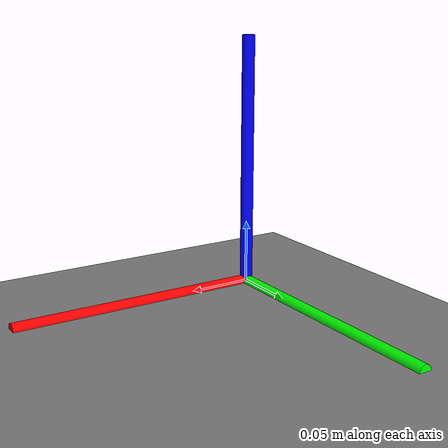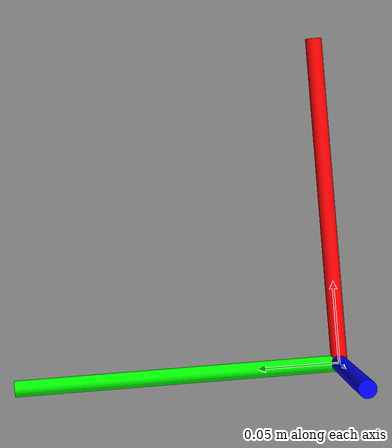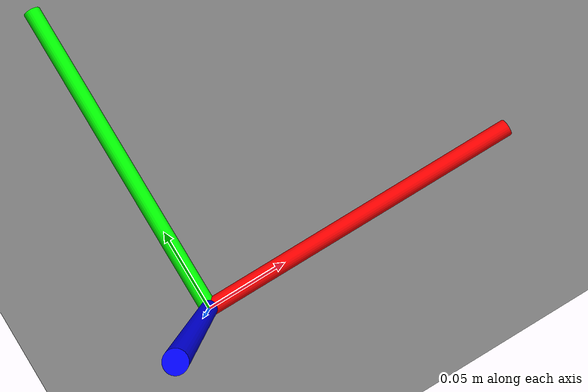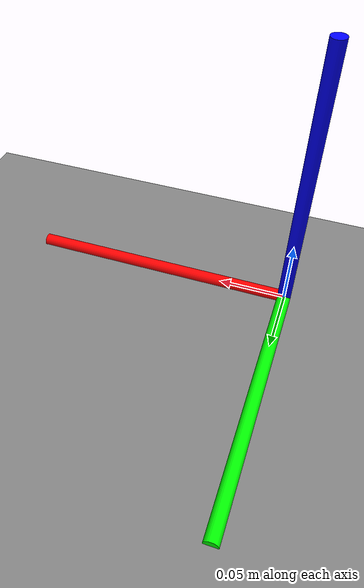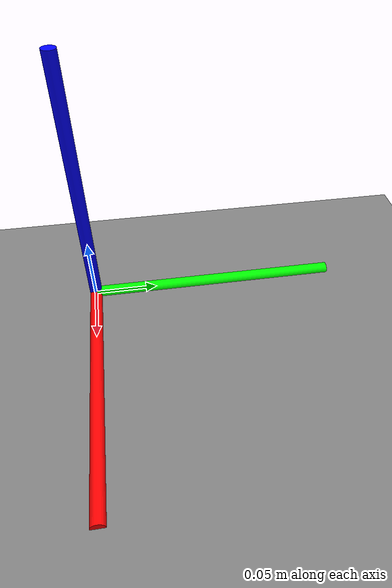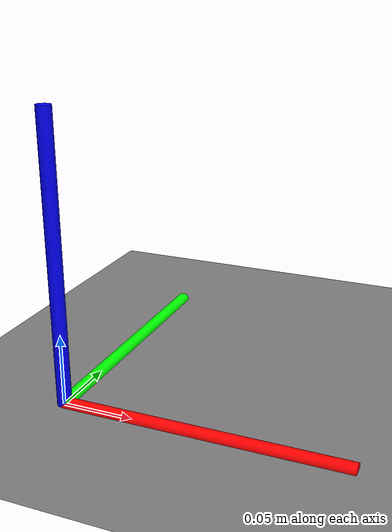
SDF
<?xml version="1.0"?>
<sdf version="1.8">
  <world name="rl_training_world">

    <!-- Physics settings optimized for RL training -->
    <physics name="default_physics" default="true" type="ode">
      <max_step_size>0.001</max_step_size>  <!-- 1ms timestep -->
      <real_time_factor>1.0</real_time_factor>
      <real_time_update_rate>1000</real_time_update_rate>  <!-- 1000 Hz -->

      <ode>
        <solver>
          <type>quick</type>
          <iters>50</iters>
          <sor>1.3</sor>
        </solver>
        <constraints>
          <cfm>0.0</cfm>
          <erp>0.2</erp>
          <contact_max_correcting_vel>100.0</contact_max_correcting_vel>
          <contact_surface_layer>0.001</contact_surface_layer>
        </constraints>
      </ode>
    </physics>

    <!-- Scene settings -->
    <scene>
      <ambient>0.8 0.8 0.8 1.0</ambient>
      <background>0.7 0.7 0.7 1.0</background>
      <shadows>true</shadows>
      <grid>true</grid>
    </scene>

    <!-- Sun light -->
    <light type="directional" name="sun">
      <cast_shadows>true</cast_shadows>
      <pose>0 0 10 0 0 0</pose>
      <diffuse>0.8 0.8 0.8 1</diffuse>
      <specular>0.2 0.2 0.2 1</specular>
      <attenuation>
        <range>1000</range>
        <constant>0.9</constant>
        <linear>0.01</linear>
        <quadratic>0.001</quadratic>
      </attenuation>
      <direction>-0.5 0.1 -0.9</direction>
    </light>

    <!-- Additional lighting for better visualization -->
    <light name="user_light" type="directional">
      <pose>2 2 4 0 0 0</pose>
      <diffuse>0.5 0.5 0.5 1</diffuse>
      <specular>0.1 0.1 0.1 1</specular>
      <direction>-0.5 -0.5 -1</direction>
      <cast_shadows>false</cast_shadows>
    </light>

    <!-- Ground plane -->
    <model name="ground_plane">
      <static>true</static>
      <link name="link">
        <collision name="collision">
          <geometry>
            <plane>
              <normal>0 0 1</normal>
              <size>20 20</size>
            </plane>
          </geometry>
          <surface>
            <friction>
              <ode>
                <mu>1.0</mu>
                <mu2>1.0</mu2>
              </ode>
            </friction>
          </surface>
        </collision>
        <visual name="visual">
          <geometry>
            <plane>
              <normal>0 0 1</normal>
              <size>20 20</size>
            </plane>
          </geometry>
          <material>
            <ambient>0.5 0.5 0.5 1</ambient>
            <diffuse>0.5 0.5 0.5 1</diffuse>
          </material>
        </visual>
      </link>
    </model>

    <!-- World Coordinate Frame at Origin (RGB = XYZ) -->
    <model name="world_frame">
      <static>true</static>
      <pose>0 0 0 0 0 0</pose>

      <!-- X axis (Red) -->
      <link name="x_axis">
        <pose>0.1 0 0 0 1.5708 0</pose>
        <visual name="x_visual">
          <geometry>
            <cylinder>
              <radius>0.005</radius>
              <length>0.2</length>
            </cylinder>
          </geometry>
          <material>
            <ambient>1 0 0 1</ambient>
            <diffuse>1 0 0 1</diffuse>
          </material>
        </visual>
      </link>

      <!-- Y axis (Green) -->
      <link name="y_axis">
        <pose>0 0.1 0 1.5708 0 0</pose>
        <visual name="y_visual">
          <geometry>
            <cylinder>
              <radius>0.005</radius>
              <length>0.2</length>
            </cylinder>
          </geometry>
          <material>
            <ambient>0 1 0 1</ambient>
            <diffuse>0 1 0 1</diffuse>
          </material>
        </visual>
      </link>

      <!-- Z axis (Blue) -->
      <link name="z_axis">
        <pose>0 0 0.1 0 0 0</pose>
        <visual name="z_visual">
          <geometry>
            <cylinder>
              <radius>0.005</radius>
              <length>0.2</length>
            </cylinder>
          </geometry>
          <material>
            <ambient>0 0 1 1</ambient>
            <diffuse>0 0 1 1</diffuse>
          </material>
        </visual>
      </link>
    </model>

    <!-- Drawing mode: No workspace box or target sphere -->
    <!-- These are only used for reaching mode (rl_training.world) -->

    <!-- GUI settings for better view of workspace -->
    <gui fullscreen='false'>
      <camera name='user_camera'>
        <!-- Position camera to view robot and drawing surface -->
        <pose>0.6 -0.5 0.5 0 0.4 0.8</pose>
        <view_controller>orbit</view_controller>
        <projection_type>perspective</projection_type>
      </camera>
    </gui>

  </world>
</sdf>
